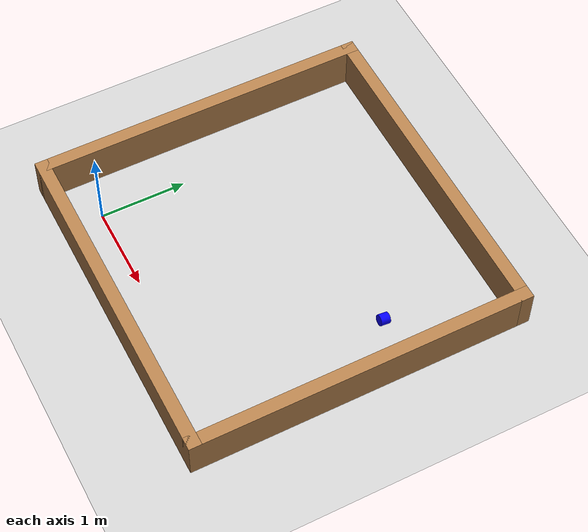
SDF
<sdf version="1.7">
 <world name="default">
  <scene><ambient>0.4 0.4 0.4 1</ambient><background>0.7 0.7 0.7 1</background><shadows>1</shadows></scene>
  <light name="sun" type="directional">
   <pose>0 0 10 0 -0 0</pose>
   <diffuse>0.8 0.8 0.8 1</diffuse>
   <specular>0.2 0.2 0.2 1</specular>
   <attenuation>
    <range>1000</range>
    <constant>0.9</constant>
    <linear>0.01</linear>
    <quadratic>0.001</quadratic>
   </attenuation>
   <direction>-0.5 0.1 -0.9</direction>
   <spot><inner_angle>0</inner_angle><outer_angle>0</outer_angle><falloff>0</falloff></spot>
  </light>
  <model name="ground_plane">
   <static>1</static>
   <link name="link">
    <collision name="collision">
     <geometry><plane><normal>0 0 1</normal><size>100 100</size></plane></geometry>
     <surface>
      <contact><collide_bitmask>65535</collide_bitmask></contact>
      <friction><ode><mu>100</mu><mu2>50</mu2></ode></friction>
     </surface>
    </collision>
    <visual name="visual">
     <cast_shadows>0</cast_shadows>
     <geometry><plane><normal>0 0 1</normal><size>100 100</size></plane></geometry>
     <material>
      <script><uri>file://media/materials/scripts/gazebo.material</uri><name>Gazebo/Grey</name></script>
     </material>
    </visual>
   </link>
  </model>
  <physics type="ode">
   <real_time_update_rate>1000</real_time_update_rate>
   <max_step_size>0.001</max_step_size>
   <real_time_factor>1</real_time_factor>
   <ode>
    <solver>
     <type>quick</type>
     <iters>150</iters>
     <precon_iters>0</precon_iters>
     <sor>1.4</sor>
     <use_dynamic_moi_rescaling>1</use_dynamic_moi_rescaling>
    </solver>
    <constraints>
     <cfm>1e-05</cfm>
     <erp>0.2</erp>
     <contact_max_correcting_vel>2000</contact_max_correcting_vel>
     <contact_surface_layer>0.01</contact_surface_layer>
    </constraints>
   </ode>
  </physics>
  <gravity>0 0 -9.8</gravity>
  <magnetic_field>6e-06 2.3e-05 -4.2e-05</magnetic_field>
  <atmosphere type="adiabatic"/>
  <spherical_coordinates>
   <surface_model>EARTH_WGS84</surface_model>
   <latitude_deg>0</latitude_deg>
   <longitude_deg>0</longitude_deg>
   <elevation>0</elevation>
   <heading_deg>0</heading_deg>
  </spherical_coordinates>
  <model name="turtlebot3_square">
   <pose>1.33462 1.51399 -0.022004 0 -0 0</pose>
   <link name="Wall_0">
    <collision name="Wall_0_Collision">
     <geometry><box><size>4 0.15 0.5</size></box></geometry>
     <pose>0 0 0.25 0 -0 0</pose>
    </collision>
    <visual name="Wall_0_Visual">
     <pose>0 0 0.25 0 -0 0</pose>
     <geometry><box><size>4 0.15 0.5</size></box></geometry>
     <material>
      <script><uri>file://media/materials/scripts/gazebo.material</uri><name>Gazebo/Wood</name></script>
      <ambient>1 1 1 1</ambient>
     </material>
    </visual>
    <pose>0 1.925 0 0 -0 0</pose>
   </link>
   <link name="Wall_2">
    <collision name="Wall_2_Collision">
     <geometry><box><size>4 0.15 0.5</size></box></geometry>
     <pose>0 0 0.25 0 -0 0</pose>
    </collision>
    <visual name="Wall_2_Visual">
     <pose>0 0 0.25 0 -0 0</pose>
     <geometry><box><size>4 0.15 0.5</size></box></geometry>
     <material>
      <script><uri>file://media/materials/scripts/gazebo.material</uri><name>Gazebo/Wood</name></script>
      <ambient>1 1 1 1</ambient>
     </material>
    </visual>
    <pose>-1.925 0 0 0 0 -1.5708</pose>
   </link>
   <link name="Wall_3">
    <collision name="Wall_3_Collision">
     <geometry><box><size>4 0.15 0.5</size></box></geometry>
     <pose>0 0 0.25 0 -0 0</pose>
    </collision>
    <visual name="Wall_3_Visual">
     <pose>0 0 0.25 0 -0 0</pose>
     <geometry><box><size>4 0.15 0.5</size></box></geometry>
     <material>
      <script><uri>file://media/materials/scripts/gazebo.material</uri><name>Gazebo/Wood</name></script>
      <ambient>1 1 1 1</ambient>
     </material>
    </visual>
    <pose>0 -1.925 0 0 -0 0</pose>
   </link>
   <link name="Wall_4">
    <collision name="Wall_4_Collision">
     <geometry><box><size>4 0.15 0.5</size></box></geometry>
     <pose>0 0 0.25 0 -0 0</pose>
    </collision>
    <visual name="Wall_4_Visual">
     <pose>0 0 0.25 0 -0 0</pose>
     <geometry><box><size>4 0.15 0.5</size></box></geometry>
     <material>
      <script><uri>file://media/materials/scripts/gazebo.material</uri><name>Gazebo/Wood</name></script>
      <ambient>1 1 1 1</ambient>
     </material>
    </visual>
    <pose>1.925 0 0 0 -0 1.5708</pose>
   </link>
   <static>1</static>
  </model>
  <model name="blue_cylinder">
   <link name="link">
    <inertial>
     <mass>0.00173206</mass>
     <inertia>
      <ixx>3.44e-06</ixx>
      <ixy>0</ixy>
      <ixz>0</ixz>
      <iyy>3.44e-06</iyy>
      <iyz>0</iyz>
      <izz>3.44e-06</izz>
     </inertia>
    </inertial>
    <pose>0 0 0 3.14159 1.45845 3.14159</pose>
    <gravity>0</gravity>
    <visual name="visual">
     <geometry><cylinder><radius>0.0630049</radius><length>0.109066</length></cylinder></geometry>
     <material>
      <script><name>Gazebo/Grey</name><uri>file://media/materials/scripts/gazebo.material</uri></script>
      <shader type="pixel"><normal_map>__default__</normal_map></shader>
      <ambient>0.024 0 1 1</ambient>
      <diffuse>0.024 0 1 1</diffuse>
      <specular>0.024 0 1 1</specular>
      <emissive>0.024 0 1 1</emissive>
     </material>
    </visual>
    <collision name="collision">
     <geometry><cylinder><radius>0.063005</radius><length>0.109066</length></cylinder></geometry>
     <surface>
      <friction>
       <ode><mu>1</mu><mu2>1</mu2><fdir1>0 0 0</fdir1><slip1>0</slip1><slip2>0</slip2></ode>
       <torsional>
        <coefficient>1</coefficient>
        <patch_radius>0</patch_radius>
        <surface_radius>0</surface_radius>
        <use_patch_radius>1</use_patch_radius>
        <ode><slip>0</slip></ode>
       </torsional>
      </friction>
      <bounce><restitution_coefficient>0</restitution_coefficient><threshold>1e+06</threshold></bounce>
      <contact>
       <collide_without_contact>0</collide_without_contact>
       <collide_without_contact_bitmask>1</collide_without_contact_bitmask>
       <collide_bitmask>1</collide_bitmask>
       <ode>
        <soft_cfm>0</soft_cfm>
        <soft_erp>0.2</soft_erp>
        <kp>1e+13</kp>
        <kd>1</kd>
        <max_vel>0.01</max_vel>
        <min_depth>0</min_depth>
       </ode>
       <bullet>
        <split_impulse>1</split_impulse>
        <split_impulse_penetration_threshold>-0.01</split_impulse_penetration_threshold>
        <soft_cfm>0</soft_cfm>
        <soft_erp>0.2</soft_erp>
        <kp>1e+13</kp>
        <kd>1</kd>
       </bullet>
      </contact>
     </surface>
    </collision>
   </link>
   <static>0</static>
   <pose>2.7806 2.02665 0.316027 0 -0 1.54696</pose>
  </model>
 </world>
</sdf>
